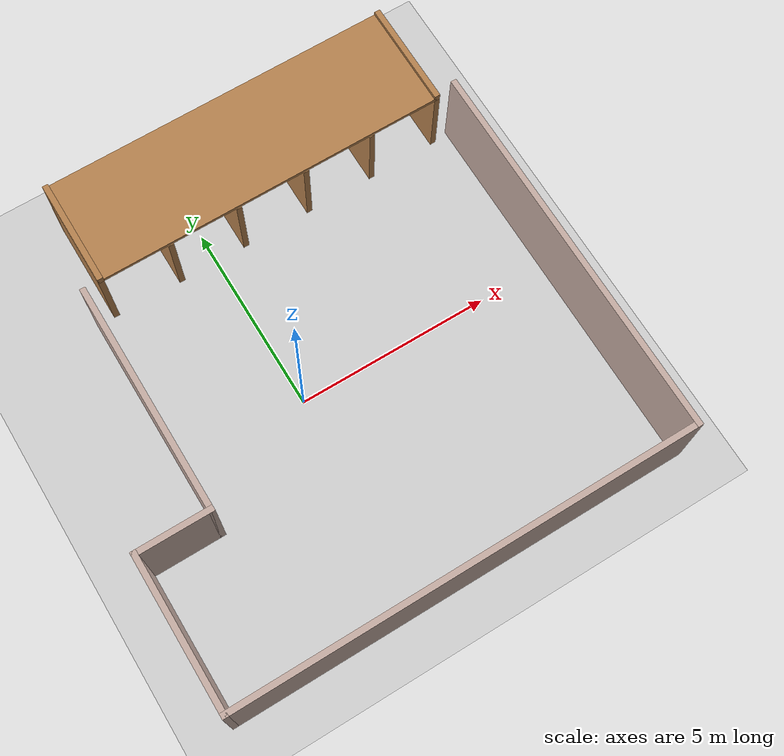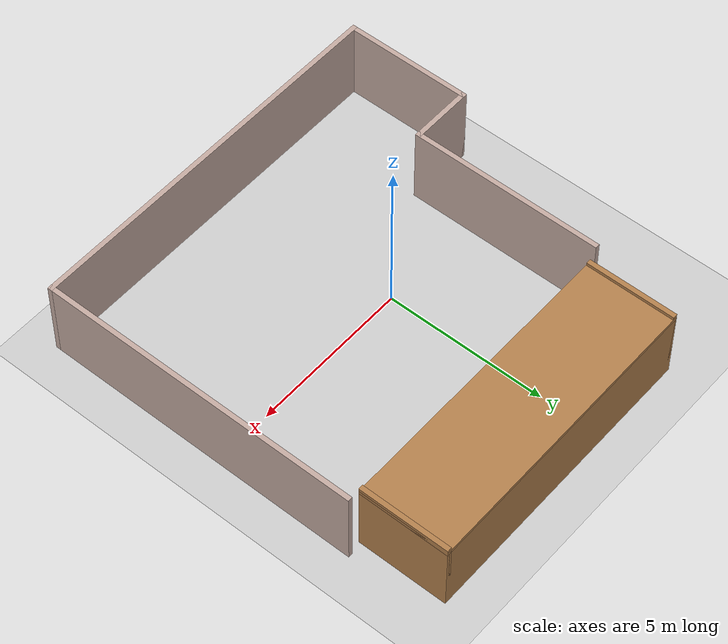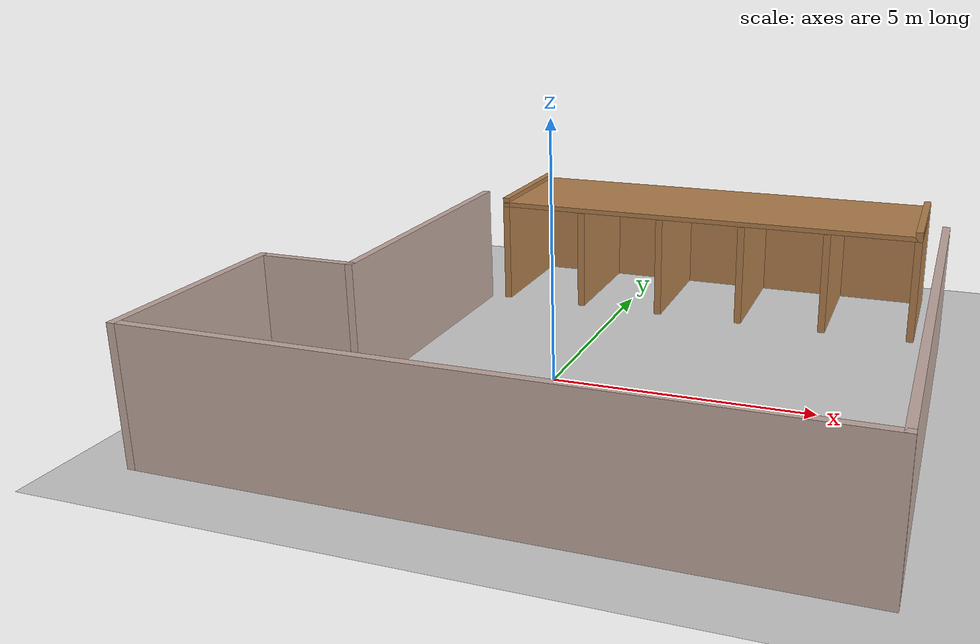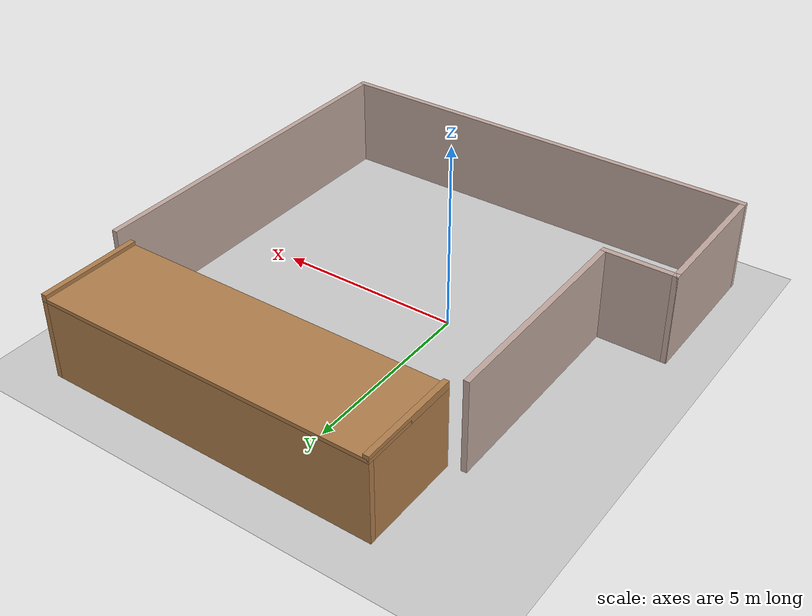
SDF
<sdf version="1.7">
 <world name="default">
  <light name="sun" type="directional">
   <pose>0 0 10 0 -0 0</pose>
   <diffuse>0.8 0.8 0.8 1</diffuse>
   <specular>0.2 0.2 0.2 1</specular>
   <attenuation>
    <range>1000</range>
    <constant>0.9</constant>
    <linear>0.01</linear>
    <quadratic>0.001</quadratic>
   </attenuation>
   <direction>-0.5 0.1 -0.9</direction>
   <spot><inner_angle>0</inner_angle><outer_angle>0</outer_angle><falloff>0</falloff></spot>
  </light>
  <model name="ground_plane">
   <static>1</static>
   <link name="link">
    <collision name="collision">
     <geometry><plane><normal>0 0 1</normal><size>100 100</size></plane></geometry>
     <surface>
      <contact><collide_bitmask>65535</collide_bitmask></contact>
      <friction><ode><mu>100</mu><mu2>50</mu2></ode></friction>
     </surface>
    </collision>
    <visual name="visual">
     <cast_shadows>0</cast_shadows>
     <geometry><plane><normal>0 0 1</normal><size>100 100</size></plane></geometry>
     <material>
      <script><uri>file://media/materials/scripts/gazebo.material</uri><name>Gazebo/Grey</name></script>
     </material>
    </visual>
   </link>
  </model>
  <gravity>0 0 -9.8</gravity>
  <magnetic_field>6e-06 2.3e-05 -4.2e-05</magnetic_field>
  <atmosphere type="adiabatic"/>
  <physics type="ode">
   <max_step_size>0.001</max_step_size>
   <real_time_factor>1</real_time_factor>
   <real_time_update_rate>1000</real_time_update_rate>
  </physics>
  <scene><ambient>0.4 0.4 0.4 1</ambient><background>0.7 0.7 0.7 1</background><shadows>1</shadows></scene>
  <spherical_coordinates>
   <surface_model>EARTH_WGS84</surface_model>
   <latitude_deg>0</latitude_deg>
   <longitude_deg>0</longitude_deg>
   <elevation>0</elevation>
   <heading_deg>0</heading_deg>
  </spherical_coordinates>
  <model name="parkplatz_2">
   <pose>0.862348 -0.657107 0 0 -0 0</pose>
   <link name="Wall_1">
    <collision name="Wall_1_Collision">
     <geometry><box><size>10 0.15 2.5</size></box></geometry>
     <pose>0 0 1.25 0 -0 0</pose>
    </collision>
    <visual name="Wall_1_Visual">
     <pose>0 0 1.25 0 -0 0</pose>
     <geometry><box><size>10 0.15 2.5</size></box></geometry>
     <material>
      <script><uri>file://media/materials/scripts/gazebo.material</uri><name>Gazebo/Grey</name></script>
      <ambient>0.760784 0.662745 0.627451 1</ambient>
     </material>
     <meta><layer>0</layer></meta>
    </visual>
    <pose>5.925 0 0 0 -0 -1.5708</pose>
   </link>
   <link name="Wall_2">
    <collision name="Wall_2_Collision">
     <geometry><box><size>12 0.15 2.5</size></box></geometry>
     <pose>0 0 1.25 0 -0 0</pose>
    </collision>
    <visual name="Wall_2_Visual">
     <pose>0 0 1.25 0 -0 0</pose>
     <geometry><box><size>12 0.15 2.5</size></box></geometry>
     <material>
      <script><uri>file://media/materials/scripts/gazebo.material</uri><name>Gazebo/Grey</name></script>
      <ambient>0.760784 0.662745 0.627451 1</ambient>
     </material>
     <meta><layer>0</layer></meta>
    </visual>
    <pose>-0 -4.925 0 0 -0 3.14159</pose>
   </link>
   <link name="Wall_3">
    <collision name="Wall_3_Collision">
     <geometry><box><size>4 0.15 2.5</size></box></geometry>
     <pose>0 0 1.25 0 -0 0</pose>
    </collision>
    <visual name="Wall_3_Visual">
     <pose>0 0 1.25 0 -0 0</pose>
     <geometry><box><size>4 0.15 2.5</size></box></geometry>
     <material>
      <script><uri>file://media/materials/scripts/gazebo.material</uri><name>Gazebo/Grey</name></script>
      <ambient>0.760784 0.662745 0.627451 1</ambient>
     </material>
     <meta><layer>0</layer></meta>
    </visual>
    <pose>-5.925 -3 0 0 -0 1.5708</pose>
   </link>
   <link name="Wall_4">
    <collision name="Wall_4_Collision">
     <geometry><box><size>2 0.15 2.5</size></box></geometry>
     <pose>0 0 1.25 0 -0 0</pose>
    </collision>
    <visual name="Wall_4_Visual">
     <pose>0 0 1.25 0 -0 0</pose>
     <geometry><box><size>2 0.15 2.5</size></box></geometry>
     <material>
      <script><uri>file://media/materials/scripts/gazebo.material</uri><name>Gazebo/Grey</name></script>
      <ambient>0.760784 0.662745 0.627451 1</ambient>
     </material>
     <meta><layer>0</layer></meta>
    </visual>
    <pose>-5 -1.075 0 0 -0 0</pose>
   </link>
   <link name="Wall_5">
    <collision name="Wall_5_Collision">
     <geometry><box><size>6 0.15 2.5</size></box></geometry>
     <pose>0 0 1.25 0 -0 0</pose>
    </collision>
    <visual name="Wall_5_Visual">
     <pose>0 0 1.25 0 -0 0</pose>
     <geometry><box><size>6 0.15 2.5</size></box></geometry>
     <material>
      <script><uri>file://media/materials/scripts/gazebo.material</uri><name>Gazebo/Grey</name></script>
      <ambient>0.760784 0.662745 0.627451 1</ambient>
     </material>
     <meta><layer>0</layer></meta>
    </visual>
    <pose>-4.075 1.85 0 0 -0 1.5708</pose>
   </link>
   <static>1</static>
  </model>
  <model name="parkplatz_01">
   <pose>1.76378 5.60526 0 0 -0 0</pose>
   <link name="Floor_0">
    <collision name="Floor_0_Collision">
     <geometry><box><size>9.2 2.75 0.1</size></box></geometry>
     <pose>0 0 0.05 0 -0 0</pose>
    </collision>
    <visual name="Floor_0_Visual">
     <pose>0 0 0.05 0 -0 0</pose>
     <geometry><box><size>9.2 2.75 0.1</size></box></geometry>
     <material>
      <script><uri>file://media/materials/scripts/gazebo.material</uri><name>Gazebo/Wood</name></script>
      <ambient>1 1 1 1</ambient>
     </material>
     <meta><layer>1</layer></meta>
    </visual>
    <pose>0 0.01 2.163 0 -0 0</pose>
   </link>
   <link name="Wall_10">
    <collision name="Wall_10_Collision">
     <geometry><box><size>2.75 0.15 2.163</size></box></geometry>
     <pose>0 0 1.0815 0 -0 0</pose>
    </collision>
    <visual name="Wall_10_Visual">
     <pose>0 0 1.0815 0 -0 0</pose>
     <geometry><box><size>2.75 0.15 2.163</size></box></geometry>
     <material>
      <script><uri>file://media/materials/scripts/gazebo.material</uri><name>Gazebo/Wood</name></script>
      <ambient>1 1 1 1</ambient>
     </material>
     <meta><layer>0</layer></meta>
    </visual>
    <pose>0.885 -0.01 0 0 -0 -1.5708</pose>
   </link>
   <link name="Wall_12">
    <collision name="Wall_12_Collision">
     <geometry><box><size>2.75 0.15 2.163</size></box></geometry>
     <pose>0 0 1.0815 0 -0 0</pose>
    </collision>
    <visual name="Wall_12_Visual">
     <pose>0 0 1.0815 0 -0 0</pose>
     <geometry><box><size>2.75 0.15 2.163</size></box></geometry>
     <material>
      <script><uri>file://media/materials/scripts/gazebo.material</uri><name>Gazebo/Wood</name></script>
      <ambient>1 1 1 1</ambient>
     </material>
     <meta><layer>0</layer></meta>
    </visual>
    <pose>2.695 -0.01 0 0 -0 -1.5708</pose>
   </link>
   <link name="Wall_17">
    <collision name="Wall_17_Collision">
     <geometry><box><size>9.2 0.15 2.163</size></box></geometry>
     <pose>0 0 1.0815 0 -0 0</pose>
    </collision>
    <visual name="Wall_17_Visual">
     <pose>0 0 1.0815 0 -0 0</pose>
     <geometry><box><size>9.2 0.15 2.163</size></box></geometry>
     <material>
      <script><uri>file://media/materials/scripts/gazebo.material</uri><name>Gazebo/Wood</name></script>
      <ambient>1 1 1 1</ambient>
     </material>
     <meta><layer>0</layer></meta>
    </visual>
    <pose>0 1.31 0 0 -0 0</pose>
   </link>
   <link name="Wall_22">
    <collision name="Wall_22_Collision">
     <geometry><box><size>2.75 0.15 2.163</size></box></geometry>
     <pose>0 0 1.0815 0 -0 0</pose>
    </collision>
    <visual name="Wall_22_Visual">
     <pose>0 0 1.0815 0 -0 0</pose>
     <geometry><box><size>2.75 0.15 2.163</size></box></geometry>
     <material>
      <script><uri>file://media/materials/scripts/gazebo.material</uri><name>Gazebo/Wood</name></script>
      <ambient>1 1 1 1</ambient>
     </material>
     <meta><layer>0</layer></meta>
    </visual>
    <pose>4.525 0.01 0 0 -0 -1.5708</pose>
   </link>
   <link name="Wall_24">
    <collision name="Wall_24_Collision">
     <geometry><box><size>2.75 0.15 0.2</size></box></geometry>
     <pose>0 0 0.1 0 -0 0</pose>
    </collision>
    <visual name="Wall_24_Visual">
     <pose>0 0 0.1 0 -0 0</pose>
     <geometry><box><size>2.75 0.15 0.2</size></box></geometry>
     <material>
      <script><uri>file://media/materials/scripts/gazebo.material</uri><name>Gazebo/Wood</name></script>
      <ambient>1 1 1 1</ambient>
     </material>
     <meta><layer>1</layer></meta>
    </visual>
    <pose>-4.525 0.01 2.163 0 -0 -1.5708</pose>
   </link>
   <link name="Wall_30">
    <collision name="Wall_30_Collision">
     <geometry><box><size>2.75 0.15 0.2</size></box></geometry>
     <pose>0 0 0.1 0 -0 0</pose>
    </collision>
    <visual name="Wall_30_Visual">
     <pose>0 0 0.1 0 -0 0</pose>
     <geometry><box><size>2.75 0.15 0.2</size></box></geometry>
     <material>
      <script><uri>file://media/materials/scripts/gazebo.material</uri><name>Gazebo/Wood</name></script>
      <ambient>1 1 1 1</ambient>
     </material>
     <meta><layer>1</layer></meta>
    </visual>
    <pose>4.525 0.01 2.163 0 -0 -1.5708</pose>
   </link>
   <link name="Wall_4">
    <collision name="Wall_4_Collision">
     <geometry><box><size>2.75 0.15 2.163</size></box></geometry>
     <pose>0 0 1.0815 0 -0 0</pose>
    </collision>
    <visual name="Wall_4_Visual">
     <pose>0 0 1.0815 0 -0 0</pose>
     <geometry><box><size>2.75 0.15 2.163</size></box></geometry>
     <material>
      <script><uri>file://media/materials/scripts/gazebo.material</uri><name>Gazebo/Wood</name></script>
      <ambient>1 1 1 1</ambient>
     </material>
     <meta><layer>0</layer></meta>
    </visual>
    <pose>-4.525 0.01 0 0 -0 -1.5708</pose>
   </link>
   <link name="Wall_6">
    <collision name="Wall_6_Collision">
     <geometry><box><size>2.75 0.15 2.163</size></box></geometry>
     <pose>0 0 1.0815 0 -0 0</pose>
    </collision>
    <visual name="Wall_6_Visual">
     <pose>0 0 1.0815 0 -0 0</pose>
     <geometry><box><size>2.75 0.15 2.163</size></box></geometry>
     <material>
      <script><uri>file://media/materials/scripts/gazebo.material</uri><name>Gazebo/Wood</name></script>
      <ambient>1 1 1 1</ambient>
     </material>
     <meta><layer>0</layer></meta>
    </visual>
    <pose>-2.725 -0.01 0 0 -0 -1.5708</pose>
   </link>
   <link name="Wall_8">
    <collision name="Wall_8_Collision">
     <geometry><box><size>2.75 0.15 2.163</size></box></geometry>
     <pose>0 0 1.0815 0 -0 0</pose>
    </collision>
    <visual name="Wall_8_Visual">
     <pose>0 0 1.0815 0 -0 0</pose>
     <geometry><box><size>2.75 0.15 2.163</size></box></geometry>
     <material>
      <script><uri>file://media/materials/scripts/gazebo.material</uri><name>Gazebo/Wood</name></script>
      <ambient>1 1 1 1</ambient>
     </material>
     <meta><layer>0</layer></meta>
    </visual>
    <pose>-0.925 -0.01 0 0 -0 -1.5708</pose>
   </link>
   <static>1</static>
  </model>
 </world>
</sdf>
